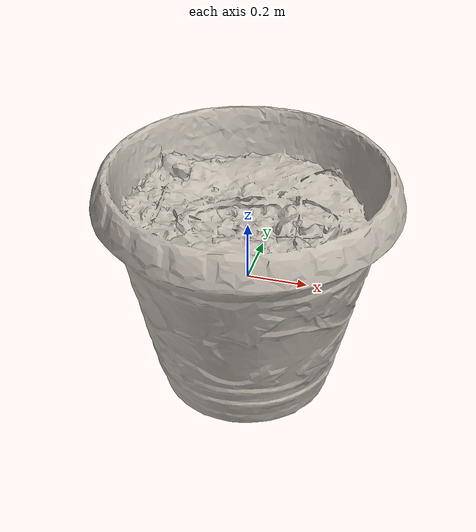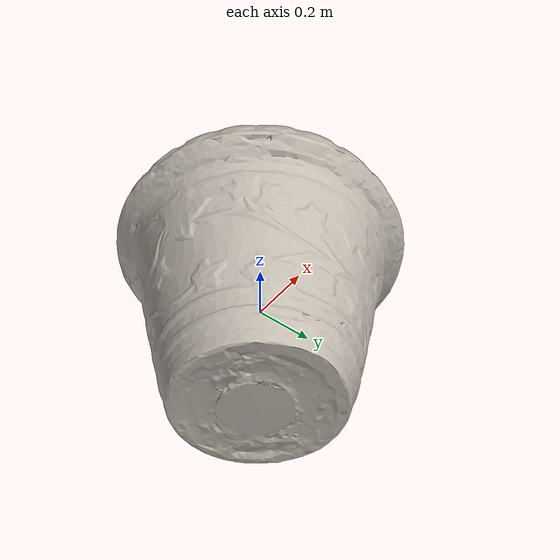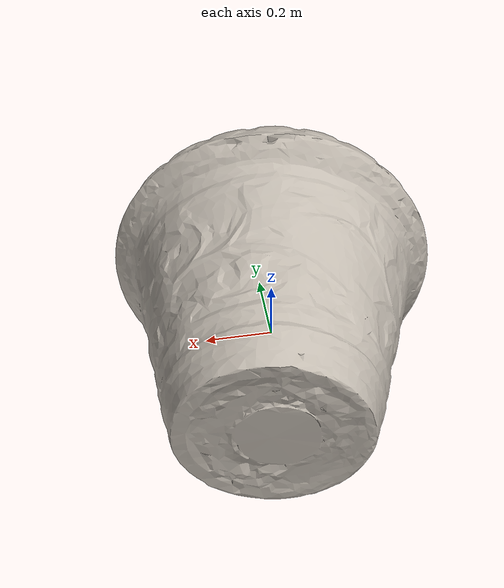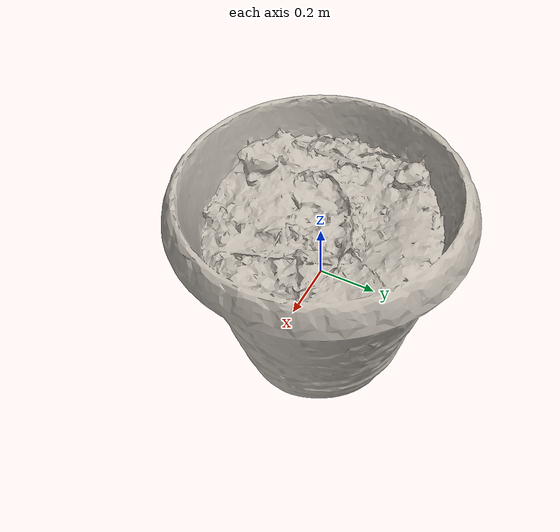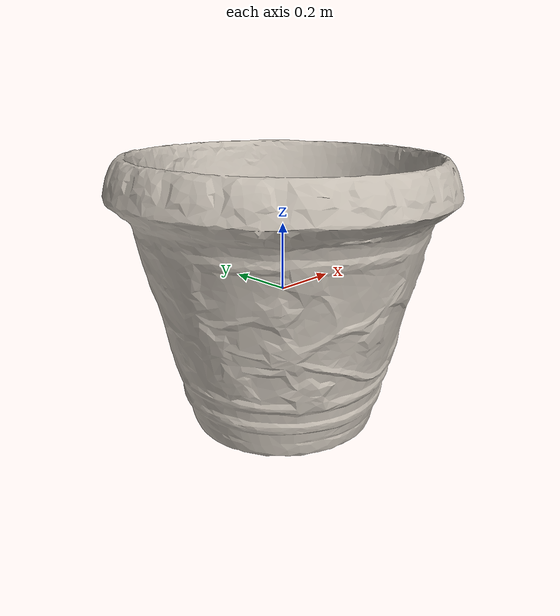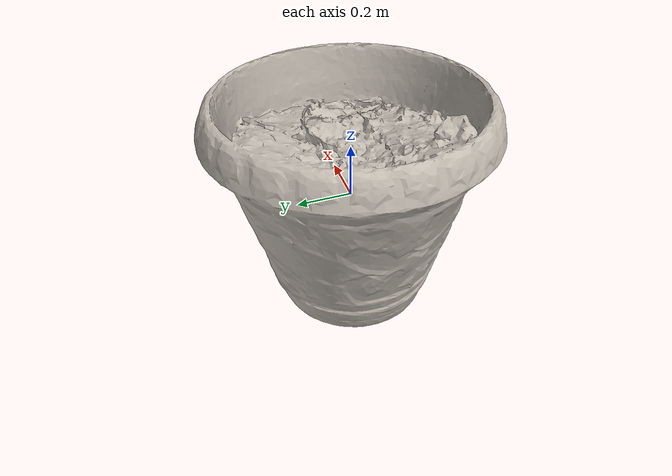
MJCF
<mujoco model="flower_pot">
  <asset>
  <texture file="visual/ceramic.png" name="tex-flower_pot" type="2d" />
  <material name="flower_pot" reflectance="0.5" texrepeat="1 1" texture="tex-flower_pot" texuniform="false" />
  <mesh file="visual/model_normalized_0.obj" name="model_normalized_0_vis" scale="1.0 1.0 1.0" /><mesh file="collision/model_normalized_collision_22.obj" name="model_normalized_collision_22._coll" scale="1.0 1.0 1.0" /><mesh file="collision/model_normalized_collision_4.obj" name="model_normalized_collision_4._coll" scale="1.0 1.0 1.0" /><mesh file="collision/model_normalized_collision_27.obj" name="model_normalized_collision_27._coll" scale="1.0 1.0 1.0" /><mesh file="collision/model_normalized_collision_6.obj" name="model_normalized_collision_6._coll" scale="1.0 1.0 1.0" /><mesh file="collision/model_normalized_collision_25.obj" name="model_normalized_collision_25._coll" scale="1.0 1.0 1.0" /><mesh file="collision/model_normalized_collision_26.obj" name="model_normalized_collision_26._coll" scale="1.0 1.0 1.0" /><mesh file="collision/model_normalized_collision_29.obj" name="model_normalized_collision_29._coll" scale="1.0 1.0 1.0" /><mesh file="collision/model_normalized_collision_19.obj" name="model_normalized_collision_19._coll" scale="1.0 1.0 1.0" /><mesh file="collision/model_normalized_collision_12.obj" name="model_normalized_collision_12._coll" scale="1.0 1.0 1.0" /><mesh file="collision/model_normalized_collision_17.obj" name="model_normalized_collision_17._coll" scale="1.0 1.0 1.0" /><mesh file="collision/model_normalized_collision_20.obj" name="model_normalized_collision_20._coll" scale="1.0 1.0 1.0" /><mesh file="collision/model_normalized_collision_14.obj" name="model_normalized_collision_14._coll" scale="1.0 1.0 1.0" /><mesh file="collision/model_normalized_collision_18.obj" name="model_normalized_collision_18._coll" scale="1.0 1.0 1.0" /><mesh file="collision/model_normalized_collision_15.obj" name="model_normalized_collision_15._coll" scale="1.0 1.0 1.0" /><mesh file="collision/model_normalized_collision_30.obj" name="model_normalized_collision_30._coll" scale="1.0 1.0 1.0" /><mesh file="collision/model_normalized_collision_31.obj" name="model_normalized_collision_31._coll" scale="1.0 1.0 1.0" /><mesh file="collision/model_normalized_collision_23.obj" name="model_normalized_collision_23._coll" scale="1.0 1.0 1.0" /><mesh file="collision/model_normalized_collision_28.obj" name="model_normalized_collision_28._coll" scale="1.0 1.0 1.0" /><mesh file="collision/model_normalized_collision_13.obj" name="model_normalized_collision_13._coll" scale="1.0 1.0 1.0" /><mesh file="collision/model_normalized_collision_5.obj" name="model_normalized_collision_5._coll" scale="1.0 1.0 1.0" /><mesh file="collision/model_normalized_collision_24.obj" name="model_normalized_collision_24._coll" scale="1.0 1.0 1.0" /><mesh file="collision/model_normalized_collision_16.obj" name="model_normalized_collision_16._coll" scale="1.0 1.0 1.0" /><mesh file="collision/model_normalized_collision_11.obj" name="model_normalized_collision_11._coll" scale="1.0 1.0 1.0" /><mesh file="collision/model_normalized_collision_1.obj" name="model_normalized_collision_1._coll" scale="1.0 1.0 1.0" /><mesh file="collision/model_normalized_collision_10.obj" name="model_normalized_collision_10._coll" scale="1.0 1.0 1.0" /><mesh file="collision/model_normalized_collision_21.obj" name="model_normalized_collision_21._coll" scale="1.0 1.0 1.0" /><mesh file="collision/model_normalized_collision_8.obj" name="model_normalized_collision_8._coll" scale="1.0 1.0 1.0" /><mesh file="collision/model_normalized_collision_7.obj" name="model_normalized_collision_7._coll" scale="1.0 1.0 1.0" /><mesh file="collision/model_normalized_collision_3.obj" name="model_normalized_collision_3._coll" scale="1.0 1.0 1.0" /><mesh file="collision/model_normalized_collision_2.obj" name="model_normalized_collision_2._coll" scale="1.0 1.0 1.0" /><mesh file="collision/model_normalized_collision_9.obj" name="model_normalized_collision_9._coll" scale="1.0 1.0 1.0" /><mesh file="collision/model_normalized_collision_0.obj" name="model_normalized_collision_0._coll" scale="1.0 1.0 1.0" /><texture type="2d" name="tex_u1_v1" file="visual/tex_u1_v1.png" /><material name="tex_u1_v1" texture="tex_u1_v1" specular="0.4000000000000001" shininess="0.001" /></asset>
  <worldbody>
    <body>
      <body name="object">
      <geom solimp="0.998 0.998 0.001" solref="0.001 1" density="100" friction="0.95 0.3 0.1" type="mesh" mesh="model_normalized_0_vis" conaffinity="0" contype="0" group="1" material="tex_u1_v1" /><geom solimp="0.998 0.998 0.001" solref="0.001 1" density="100" friction="0.95 0.3 0.1" type="mesh" mesh="model_normalized_collision_22._coll" group="0" rgba="0.8 0.8 0.8 0.0" /><geom solimp="0.998 0.998 0.001" solref="0.001 1" density="100" friction="0.95 0.3 0.1" type="mesh" mesh="model_normalized_collision_4._coll" group="0" rgba="0.8 0.8 0.8 0.0" /><geom solimp="0.998 0.998 0.001" solref="0.001 1" density="100" friction="0.95 0.3 0.1" type="mesh" mesh="model_normalized_collision_27._coll" group="0" rgba="0.8 0.8 0.8 0.0" /><geom solimp="0.998 0.998 0.001" solref="0.001 1" density="100" friction="0.95 0.3 0.1" type="mesh" mesh="model_normalized_collision_6._coll" group="0" rgba="0.8 0.8 0.8 0.0" /><geom solimp="0.998 0.998 0.001" solref="0.001 1" density="100" friction="0.95 0.3 0.1" type="mesh" mesh="model_normalized_collision_25._coll" group="0" rgba="0.8 0.8 0.8 0.0" /><geom solimp="0.998 0.998 0.001" solref="0.001 1" density="100" friction="0.95 0.3 0.1" type="mesh" mesh="model_normalized_collision_26._coll" group="0" rgba="0.8 0.8 0.8 0.0" /><geom solimp="0.998 0.998 0.001" solref="0.001 1" density="100" friction="0.95 0.3 0.1" type="mesh" mesh="model_normalized_collision_29._coll" group="0" rgba="0.8 0.8 0.8 0.0" /><geom solimp="0.998 0.998 0.001" solref="0.001 1" density="100" friction="0.95 0.3 0.1" type="mesh" mesh="model_normalized_collision_19._coll" group="0" rgba="0.8 0.8 0.8 0.0" /><geom solimp="0.998 0.998 0.001" solref="0.001 1" density="100" friction="0.95 0.3 0.1" type="mesh" mesh="model_normalized_collision_12._coll" group="0" rgba="0.8 0.8 0.8 0.0" /><geom solimp="0.998 0.998 0.001" solref="0.001 1" density="100" friction="0.95 0.3 0.1" type="mesh" mesh="model_normalized_collision_17._coll" group="0" rgba="0.8 0.8 0.8 0.0" /><geom solimp="0.998 0.998 0.001" solref="0.001 1" density="100" friction="0.95 0.3 0.1" type="mesh" mesh="model_normalized_collision_20._coll" group="0" rgba="0.8 0.8 0.8 0.0" /><geom solimp="0.998 0.998 0.001" solref="0.001 1" density="100" friction="0.95 0.3 0.1" type="mesh" mesh="model_normalized_collision_14._coll" group="0" rgba="0.8 0.8 0.8 0.0" /><geom solimp="0.998 0.998 0.001" solref="0.001 1" density="100" friction="0.95 0.3 0.1" type="mesh" mesh="model_normalized_collision_18._coll" group="0" rgba="0.8 0.8 0.8 0.0" /><geom solimp="0.998 0.998 0.001" solref="0.001 1" density="100" friction="0.95 0.3 0.1" type="mesh" mesh="model_normalized_collision_15._coll" group="0" rgba="0.8 0.8 0.8 0.0" /><geom solimp="0.998 0.998 0.001" solref="0.001 1" density="100" friction="0.95 0.3 0.1" type="mesh" mesh="model_normalized_collision_30._coll" group="0" rgba="0.8 0.8 0.8 0.0" /><geom solimp="0.998 0.998 0.001" solref="0.001 1" density="100" friction="0.95 0.3 0.1" type="mesh" mesh="model_normalized_collision_31._coll" group="0" rgba="0.8 0.8 0.8 0.0" /><geom solimp="0.998 0.998 0.001" solref="0.001 1" density="100" friction="0.95 0.3 0.1" type="mesh" mesh="model_normalized_collision_23._coll" group="0" rgba="0.8 0.8 0.8 0.0" /><geom solimp="0.998 0.998 0.001" solref="0.001 1" density="100" friction="0.95 0.3 0.1" type="mesh" mesh="model_normalized_collision_28._coll" group="0" rgba="0.8 0.8 0.8 0.0" /><geom solimp="0.998 0.998 0.001" solref="0.001 1" density="100" friction="0.95 0.3 0.1" type="mesh" mesh="model_normalized_collision_13._coll" group="0" rgba="0.8 0.8 0.8 0.0" /><geom solimp="0.998 0.998 0.001" solref="0.001 1" density="100" friction="0.95 0.3 0.1" type="mesh" mesh="model_normalized_collision_5._coll" group="0" rgba="0.8 0.8 0.8 0.0" /><geom solimp="0.998 0.998 0.001" solref="0.001 1" density="100" friction="0.95 0.3 0.1" type="mesh" mesh="model_normalized_collision_24._coll" group="0" rgba="0.8 0.8 0.8 0.0" /><geom solimp="0.998 0.998 0.001" solref="0.001 1" density="100" friction="0.95 0.3 0.1" type="mesh" mesh="model_normalized_collision_16._coll" group="0" rgba="0.8 0.8 0.8 0.0" /><geom solimp="0.998 0.998 0.001" solref="0.001 1" density="100" friction="0.95 0.3 0.1" type="mesh" mesh="model_normalized_collision_11._coll" group="0" rgba="0.8 0.8 0.8 0.0" /><geom solimp="0.998 0.998 0.001" solref="0.001 1" density="100" friction="0.95 0.3 0.1" type="mesh" mesh="model_normalized_collision_1._coll" group="0" rgba="0.8 0.8 0.8 0.0" /><geom solimp="0.998 0.998 0.001" solref="0.001 1" density="100" friction="0.95 0.3 0.1" type="mesh" mesh="model_normalized_collision_10._coll" group="0" rgba="0.8 0.8 0.8 0.0" /><geom solimp="0.998 0.998 0.001" solref="0.001 1" density="100" friction="0.95 0.3 0.1" type="mesh" mesh="model_normalized_collision_21._coll" group="0" rgba="0.8 0.8 0.8 0.0" /><geom solimp="0.998 0.998 0.001" solref="0.001 1" density="100" friction="0.95 0.3 0.1" type="mesh" mesh="model_normalized_collision_8._coll" group="0" rgba="0.8 0.8 0.8 0.0" /><geom solimp="0.998 0.998 0.001" solref="0.001 1" density="100" friction="0.95 0.3 0.1" type="mesh" mesh="model_normalized_collision_7._coll" group="0" rgba="0.8 0.8 0.8 0.0" /><geom solimp="0.998 0.998 0.001" solref="0.001 1" density="100" friction="0.95 0.3 0.1" type="mesh" mesh="model_normalized_collision_3._coll" group="0" rgba="0.8 0.8 0.8 0.0" /><geom solimp="0.998 0.998 0.001" solref="0.001 1" density="100" friction="0.95 0.3 0.1" type="mesh" mesh="model_normalized_collision_2._coll" group="0" rgba="0.8 0.8 0.8 0.0" /><geom solimp="0.998 0.998 0.001" solref="0.001 1" density="100" friction="0.95 0.3 0.1" type="mesh" mesh="model_normalized_collision_9._coll" group="0" rgba="0.8 0.8 0.8 0.0" /><geom solimp="0.998 0.998 0.001" solref="0.001 1" density="100" friction="0.95 0.3 0.1" type="mesh" mesh="model_normalized_collision_0._coll" group="0" rgba="0.8 0.8 0.8 0.0" /></body>
      <site rgba="0 0 0 0" size="0.005" pos="0.0026528137158357556 -1.0309061826418997e-08 -0.41237150656389954" name="bottom_site" />
      <site rgba="0 0 0 0" size="0.005" pos="0.0026528137158357556 -1.0309061826418997e-08 0.40581031099312703" name="top_site" />
      <site rgba="0 0 0 0" size="0.005" pos="0.5102285721767148 0.5075757481518173 -0.0032805977853862522" name="horizontal_radius_site" />
    </body>
  </worldbody>
</mujoco>
